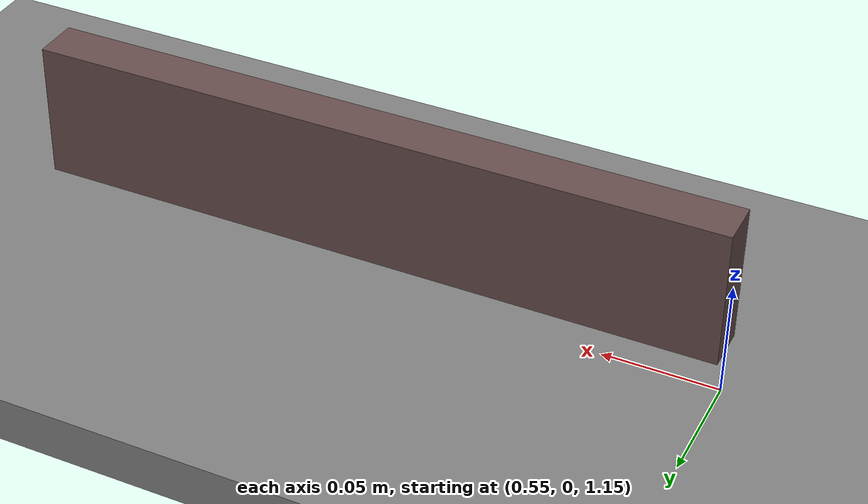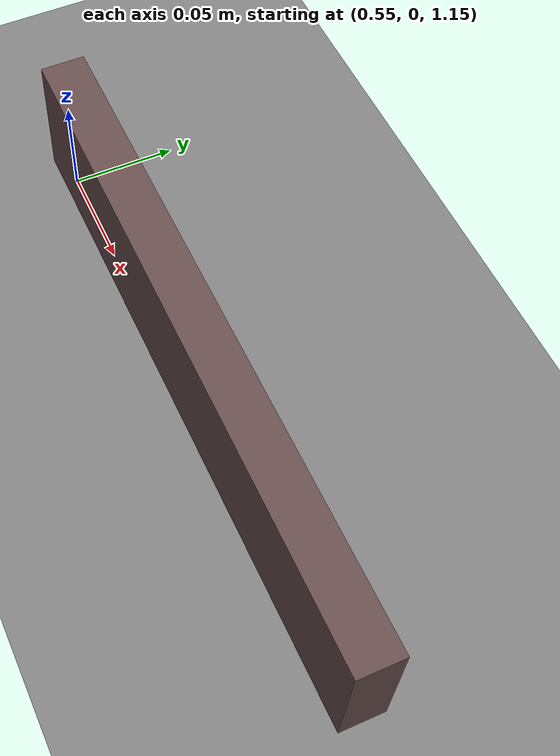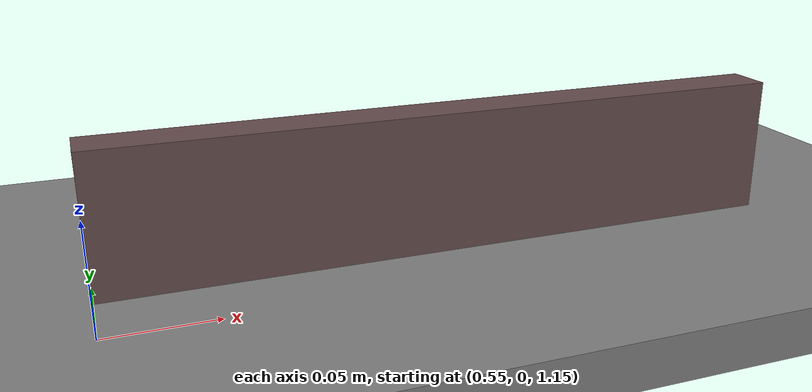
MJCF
<?xml version="1.0" ?>

<mujoco>
    <compiler angle="radian" coordinate="local"/>
    <option>
        <flag gravity="enable"/>
    </option>
    <default>
        <default class="visual">
            <geom contype="0" conaffinity="0"/>
        </default>
        <default class="collision">
            <geom contype="1" conaffinity="1"/>
        </default>
        <site rgba="1 0 0 .5"/>
    </default>

    <worldbody>
        <include file="block_collision.xml"/>
    </worldbody>
</mujoco>

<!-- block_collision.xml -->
<mujoco>
    <body name="pushing_table" euler="0 0 0" pos=".7 0 1.16">
        <geom class="collision" type="box" euler="0 0 0" pos="0 0 0" size=".4 .4 0.01" friction="0.2 0.005 0.0001"/>
    </body>
    <body name="block" euler="0 0 0" pos=".7 0 1.2">
        <freejoint name="block_position"/>
        <geom name="block_geom" class="collision" condim="3" solimp="1 .9 0.001" friction="0.2 0.005 0.0001" type="box"
              euler="0 0 0" pos="0 0 0" size="0.15 0.01 0.03" mass="1" rgba="0.4 0.3 0.3 1.0"/>
    </body>
</mujoco>
